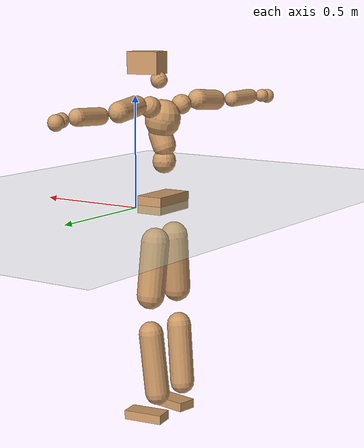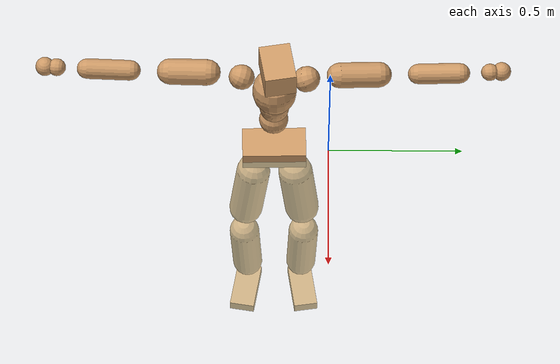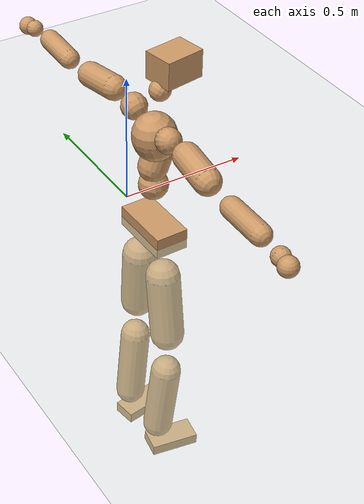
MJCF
<mujoco model="humanoid">
  <compiler coordinate="local" angle="radian"/>
  <default>
    <joint damping="0.0" armature="0.01" stiffness="0.0" limited="true"/>
    <geom conaffinity="1" condim="3" contype="7" margin="0.001" rgba="0.8 0.6 .4 1"/>
  </default>
  <asset>
    <texture type="skybox" builtin="gradient" rgb1=".4 .5 .6" rgb2="0 0 0" width="100" height="100"/>
    <texture builtin="flat" height="1278" mark="cross" markrgb="1 1 1" name="texgeom" random="0.01" rgb1="0.8 0.6 0.4" rgb2="0.8 0.6 0.4" type="cube" width="127"/>
    <texture builtin="checker" height="100" name="texplane" rgb1="0 0 0" rgb2="0.8 0.8 0.8" type="2d" width="100"/>
    <material name="MatPlane" reflectance="0.5" shininess="1" specular="1" texrepeat="60 60" texture="texplane"/>
    <material name="geom" texture="texgeom" texuniform="true"/>
  </asset>
  <worldbody>
    <light cutoff="100" diffuse="1 1 1" dir="-0 0 -1.3" directional="true" exponent="1" pos="0 0 1.3" specular=".1 .1 .1"/>
    <geom conaffinity="1" condim="3" name="floor" pos="0 0 0" rgba="0.8 0.9 0.8 1" size="100 100 .2" type="plane" material="MatPlane"/>
    <body name="Pelvis" pos="-0.0004 -0.2041 0.0126">
      <freejoint name="Pelvis"/>
      <geom type="box" contype="1" conaffinity="1" density="5359.375246" pos="-0.0083 -0.0002 -0.0124" size="0.0621 0.119 0.0399" quat="0.9999 0.0000 0.0000 0.0120" name="Pelvis"/>
      <body name="L_Hip" pos="-0.0213 0.0703 -0.0908">
        <joint name="L_Hip_x" type="hinge" pos="0 0 0" axis="1 0 0" stiffness="1600" damping="160" armature="0.02" range="-180.0000 180.0000"/>
        <joint name="L_Hip_y" type="hinge" pos="0 0 0" axis="0 1 0" stiffness="1600" damping="160" armature="0.02" range="-180.0000 180.0000"/>
        <joint name="L_Hip_z" type="hinge" pos="0 0 0" axis="0 0 1" stiffness="1600" damping="160" armature="0.02" range="-180.0000 180.0000"/>
        <geom type="capsule" contype="1" conaffinity="1" density="2040.816327" size="0.0646" fromto="0.0024 0.0101 -0.0941 0.0089 0.0367 -0.3417" name="L_Hip"/>
        <body name="L_Knee" pos="0.0113 0.0468 -0.4357">
          <joint name="L_Knee_x" type="hinge" pos="0 0 0" axis="1 0 0" stiffness="1600" damping="160" armature="0.02" range="-180.0000 180.0000"/>
          <joint name="L_Knee_y" type="hinge" pos="0 0 0" axis="0 1 0" stiffness="1600" damping="160" armature="0.02" range="-180.0000 180.0000"/>
          <joint name="L_Knee_z" type="hinge" pos="0 0 0" axis="0 0 1" stiffness="1600" damping="160" armature="0.02" range="-180.0000 180.0000"/>
          <geom type="capsule" contype="1" conaffinity="1" density="1234.567901" size="0.0569" fromto="-0.0090 -0.0027 -0.0864 -0.0386 -0.0114 -0.3687" name="L_Knee"/>
          <body name="L_Ankle" pos="-0.0476 -0.014 -0.4551">
            <joint name="L_Ankle_x" type="hinge" pos="0 0 0" axis="1 0 0" stiffness="1600" damping="160" armature="0.02" range="-180.0000 180.0000"/>
            <joint name="L_Ankle_y" type="hinge" pos="0 0 0" axis="0 1 0" stiffness="1600" damping="160" armature="0.02" range="-180.0000 180.0000"/>
            <joint name="L_Ankle_z" type="hinge" pos="0 0 0" axis="0 0 1" stiffness="1600" damping="160" armature="0.02" range="-180.0000 180.0000"/>
            <geom type="box" contype="1" conaffinity="1" density="1000.000002" pos="0.0649 0.0101 -0.0310" size="0.0922 0.0457 0.0214" quat="0.9970 0.0000 0.0000 0.0774" name="L_Ankle"/>
            <body name="L_Toe" pos="0.1299 0.0203 -0.0619">
              <joint name="L_Toe_x" type="hinge" pos="0 0 0" axis="1 0 0" stiffness="1000" damping="100" armature="0.02" range="-180.0000 180.0000"/>
              <joint name="L_Toe_y" type="hinge" pos="0 0 0" axis="0 1 0" stiffness="1000" damping="100" armature="0.02" range="-180.0000 180.0000"/>
              <joint name="L_Toe_z" type="hinge" pos="0 0 0" axis="0 0 1" stiffness="1000" damping="100" armature="0.02" range="-180.0000 180.0000"/>
              <geom type="box" contype="1" conaffinity="1" density="9331595.616689" pos="0.0000 0.0000 0.0320" size="0.0009 0.0023 0.0011" quat="0.9965 0.0000 0.0000 0.0836" name="L_Toe"/>
            </body>
          </body>
        </body>
      </body>
      <body name="R_Hip" pos="-0.0172 -0.0674 -0.0873">
        <joint name="R_Hip_x" type="hinge" pos="0 0 0" axis="1 0 0" stiffness="1600" damping="160" armature="0.02" range="-180.0000 180.0000"/>
        <joint name="R_Hip_y" type="hinge" pos="0 0 0" axis="0 1 0" stiffness="1600" damping="160" armature="0.02" range="-180.0000 180.0000"/>
        <joint name="R_Hip_z" type="hinge" pos="0 0 0" axis="0 0 1" stiffness="1600" damping="160" armature="0.02" range="-180.0000 180.0000"/>
        <geom type="capsule" contype="1" conaffinity="1" density="2040.816327" size="0.0636" fromto="0.0012 -0.0109 -0.0929 0.0046 -0.0414 -0.3527" name="R_Hip"/>
        <body name="R_Knee" pos="0.0058 -0.0523 -0.4457">
          <joint name="R_Knee_x" type="hinge" pos="0 0 0" axis="1 0 0" stiffness="1600" damping="160" armature="0.02" range="-180.0000 180.0000"/>
          <joint name="R_Knee_y" type="hinge" pos="0 0 0" axis="0 1 0" stiffness="1600" damping="160" armature="0.02" range="-180.0000 180.0000"/>
          <joint name="R_Knee_z" type="hinge" pos="0 0 0" axis="0 0 1" stiffness="1600" damping="160" armature="0.02" range="-180.0000 180.0000"/>
          <geom type="capsule" contype="1" conaffinity="1" density="1234.567901" size="0.0572" fromto="-0.0086 0.0034 -0.0867 -0.0361 0.0141 -0.3656" name="R_Knee"/>
          <body name="R_Ankle" pos="-0.0447 0.0175 -0.4524">
            <joint name="R_Ankle_x" type="hinge" pos="0 0 0" axis="1 0 0" stiffness="1600" damping="160" armature="0.02" range="-180.0000 180.0000"/>
            <joint name="R_Ankle_y" type="hinge" pos="0 0 0" axis="0 1 0" stiffness="1600" damping="160" armature="0.02" range="-180.0000 180.0000"/>
            <joint name="R_Ankle_z" type="hinge" pos="0 0 0" axis="0 0 1" stiffness="1600" damping="160" armature="0.02" range="-180.0000 180.0000"/>
            <geom type="box" contype="1" conaffinity="1" density="1000.000024" pos="0.0664 -0.0107 -0.0264" size="0.0925 0.0477 0.0213" quat="0.9968 0.0000 0.0000 -0.0796" name="R_Ankle"/>
            <body name="R_Toe" pos="0.1328 -0.0213 -0.0528">
              <joint name="R_Toe_x" type="hinge" pos="0 0 0" axis="1 0 0" stiffness="1000" damping="100" armature="0.02" range="-180.0000 180.0000"/>
              <joint name="R_Toe_y" type="hinge" pos="0 0 0" axis="0 1 0" stiffness="1000" damping="100" armature="0.02" range="-180.0000 180.0000"/>
              <joint name="R_Toe_z" type="hinge" pos="0 0 0" axis="0 0 1" stiffness="1000" damping="100" armature="0.02" range="-180.0000 180.0000"/>
              <geom type="box" contype="1" conaffinity="1" density="9222543.900267" pos="0.0000 0.0000 0.0297" size="0.0008 0.0023 0.0012" quat="0.9975 0.0000 0.0000 -0.0712" name="R_Toe"/>
            </body>
          </body>
        </body>
      </body>
      <body name="Torso" pos="-0.0114 -0.0042 0.1038">
        <joint name="Torso_x" type="hinge" pos="0 0 0" axis="1 0 0" stiffness="2000" damping="200" armature="0.02" range="-180.0000 180.0000"/>
        <joint name="Torso_y" type="hinge" pos="0 0 0" axis="0 1 0" stiffness="2000" damping="200" armature="0.02" range="-180.0000 180.0000"/>
        <joint name="Torso_z" type="hinge" pos="0 0 0" axis="0 0 1" stiffness="2000" damping="200" armature="0.02" range="-180.0000 180.0000"/>
        <geom type="capsule" contype="1" conaffinity="1" density="2040.816327" size="0.0544" fromto="-0.0011 0.0024 0.0723 -0.0011 0.0024 0.0743" name="Torso"/>
        <body name="Spine" pos="-0.0021 0.0048 0.1466">
          <joint name="Spine_x" type="hinge" pos="0 0 0" axis="1 0 0" stiffness="2000" damping="200" armature="0.02" range="-180.0000 180.0000"/>
          <joint name="Spine_y" type="hinge" pos="0 0 0" axis="0 1 0" stiffness="2000" damping="200" armature="0.02" range="-180.0000 180.0000"/>
          <joint name="Spine_z" type="hinge" pos="0 0 0" axis="0 0 1" stiffness="2000" damping="200" armature="0.02" range="-180.0000 180.0000"/>
          <geom type="capsule" contype="1" conaffinity="1" density="2040.816327" size="0.054" fromto="0.0202 0.0016 0.0500 -0.0002 -0.0000 -0.0004" name="Spine"/>
          <body name="Chest" pos="0.0201 0.0015 0.0496">
            <joint name="Chest_x" type="hinge" pos="0 0 0" axis="1 0 0" stiffness="2000" damping="200" armature="0.02" range="-180.0000 180.0000"/>
            <joint name="Chest_y" type="hinge" pos="0 0 0" axis="0 1 0" stiffness="2000" damping="200" armature="0.02" range="-180.0000 180.0000"/>
            <joint name="Chest_z" type="hinge" pos="0 0 0" axis="0 0 1" stiffness="2000" damping="200" armature="0.02" range="-180.0000 180.0000"/>
            <geom type="capsule" contype="1" conaffinity="1" density="2040.816327" size="0.0805" fromto="-0.0144 -0.0009 0.0791 -0.0115 -0.0007 0.0630" name="Chest"/>
            <body name="Neck" pos="-0.0222 -0.0032 0.2079">
              <joint name="Neck_x" type="hinge" pos="0 0 0" axis="1 0 0" stiffness="1000" damping="100" armature="0.02" range="-180.0000 180.0000"/>
              <joint name="Neck_y" type="hinge" pos="0 0 0" axis="0 1 0" stiffness="1000" damping="100" armature="0.02" range="-180.0000 180.0000"/>
              <joint name="Neck_z" type="hinge" pos="0 0 0" axis="0 0 1" stiffness="1000" damping="100" armature="0.02" range="-180.0000 180.0000"/>
              <geom type="capsule" contype="1" conaffinity="1" density="1000" size="0.0383" fromto="0.0283 0.0042 0.0369 0.0295 0.0043 0.0384" name="Neck"/>
              <body name="Head" pos="0.0579 0.0085 0.0753">
                <joint name="Head_x" type="hinge" pos="0 0 0" axis="1 0 0" stiffness="1000" damping="100" armature="0.02" range="-180.0000 180.0000"/>
                <joint name="Head_y" type="hinge" pos="0 0 0" axis="0 1 0" stiffness="1000" damping="100" armature="0.02" range="-180.0000 180.0000"/>
                <joint name="Head_z" type="hinge" pos="0 0 0" axis="0 0 1" stiffness="1000" damping="100" armature="0.02" range="-180.0000 180.0000"/>
                <geom type="box" contype="1" conaffinity="1" density="2249.999974" pos="0.0299 0.0052 0.0387" size="0.0744 0.0567 0.0509" quat="0.9962 0.0000 0.0000 0.0867" name="Head"/>
              </body>
            </body>
            <body name="L_Thorax" pos="-0.0244 0.0723 0.1111">
              <joint name="L_Thorax_x" type="hinge" pos="0 0 0" axis="1 0 0" stiffness="1000" damping="100" armature="0.02" range="-180.0000 180.0000"/>
              <joint name="L_Thorax_y" type="hinge" pos="0 0 0" axis="0 1 0" stiffness="1000" damping="100" armature="0.02" range="-180.0000 180.0000"/>
              <joint name="L_Thorax_z" type="hinge" pos="0 0 0" axis="0 0 1" stiffness="1000" damping="100" armature="0.02" range="-180.0000 180.0000"/>
              <geom type="capsule" contype="1" conaffinity="1" density="1000" size="0.0478" fromto="-0.0008 0.0430 0.0210 -0.0009 0.0448 0.0219" name="L_Thorax"/>
              <body name="L_Shoulder" pos="-0.0017 0.0877 0.0429">
                <joint name="L_Shoulder_x" type="hinge" pos="0 0 0" axis="1 0 0" stiffness="1000" damping="100" armature="0.02" range="-720.0000 720.0000"/>
                <joint name="L_Shoulder_y" type="hinge" pos="0 0 0" axis="0 1 0" stiffness="1000" damping="100" armature="0.02" range="-720.0000 720.0000"/>
                <joint name="L_Shoulder_z" type="hinge" pos="0 0 0" axis="0 0 1" stiffness="1000" damping="100" armature="0.02" range="-720.0000 720.0000"/>
                <geom type="capsule" contype="1" conaffinity="1" density="1000" size="0.0466" fromto="-0.0078 0.0757 -0.0080 -0.0227 0.2195 -0.0230" name="L_Shoulder"/>
                <body name="L_Elbow" pos="-0.0305 0.2952 -0.031">
                  <joint name="L_Elbow_x" type="hinge" pos="0 0 0" axis="1 0 0" stiffness="1000" damping="100" armature="0.02" range="-720.0000 720.0000"/>
                  <joint name="L_Elbow_y" type="hinge" pos="0 0 0" axis="0 1 0" stiffness="1000" damping="100" armature="0.02" range="-720.0000 720.0000"/>
                  <joint name="L_Elbow_z" type="hinge" pos="0 0 0" axis="0 0 1" stiffness="1000" damping="100" armature="0.02" range="-720.0000 720.0000"/>
                  <geom type="capsule" contype="1" conaffinity="1" density="1000" size="0.0373" fromto="-0.0000 0.0672 0.0030 -0.0001 0.2189 0.0098" name="L_Elbow"/>
                  <body name="L_Wrist" pos="-0.0001 0.2861 0.0129">
                    <joint name="L_Wrist_x" type="hinge" pos="0 0 0" axis="1 0 0" stiffness="600" damping="60" armature="0.02" range="-180.0000 180.0000"/>
                    <joint name="L_Wrist_y" type="hinge" pos="0 0 0" axis="0 1 0" stiffness="600" damping="60" armature="0.02" range="-180.0000 180.0000"/>
                    <joint name="L_Wrist_z" type="hinge" pos="0 0 0" axis="0 0 1" stiffness="600" damping="60" armature="0.02" range="-180.0000 180.0000"/>
                    <geom type="capsule" contype="1" conaffinity="1" density="1000" size="0.0313" fromto="-0.0072 0.0420 -0.0055 -0.0075 0.0439 -0.0058" name="L_Wrist"/>
                    <body name="L_Hand" pos="-0.0146 0.0859 -0.0113">
                      <joint name="L_Hand_x" type="hinge" pos="0 0 0" axis="1 0 0" stiffness="600" damping="60" armature="0.02" range="-180.0000 180.0000"/>
                      <joint name="L_Hand_y" type="hinge" pos="0 0 0" axis="0 1 0" stiffness="600" damping="60" armature="0.02" range="-180.0000 180.0000"/>
                      <joint name="L_Hand_z" type="hinge" pos="0 0 0" axis="0 0 1" stiffness="600" damping="60" armature="0.02" range="-180.0000 180.0000"/>
                      <geom type="sphere" contype="1" conaffinity="1" density="1000" size="0.0342" pos="0.0000 0.0000 0.0000" name="L_Hand"/>
                    </body>
                  </body>
                </body>
              </body>
            </body>
            <body name="R_Thorax" pos="-0.0312 -0.0738 0.1075">
              <joint name="R_Thorax_x" type="hinge" pos="0 0 0" axis="1 0 0" stiffness="1000" damping="100" armature="0.02" range="-180.0000 180.0000"/>
              <joint name="R_Thorax_y" type="hinge" pos="0 0 0" axis="0 1 0" stiffness="1000" damping="100" armature="0.02" range="-180.0000 180.0000"/>
              <joint name="R_Thorax_z" type="hinge" pos="0 0 0" axis="0 0 1" stiffness="1000" damping="100" armature="0.02" range="-180.0000 180.0000"/>
              <geom type="capsule" contype="1" conaffinity="1" density="1000" size="0.0461" fromto="-0.0032 -0.0460 0.0210 -0.0034 -0.0478 0.0218" name="R_Thorax"/>
              <body name="R_Shoulder" pos="-0.0066 -0.0938 0.0428">
                <joint name="R_Shoulder_x" type="hinge" pos="0 0 0" axis="1 0 0" stiffness="1000" damping="100" armature="0.02" range="-720.0000 720.0000"/>
                <joint name="R_Shoulder_y" type="hinge" pos="0 0 0" axis="0 1 0" stiffness="1000" damping="100" armature="0.02" range="-720.0000 720.0000"/>
                <joint name="R_Shoulder_z" type="hinge" pos="0 0 0" axis="0 0 1" stiffness="1000" damping="100" armature="0.02" range="-720.0000 720.0000"/>
                <geom type="capsule" contype="1" conaffinity="1" density="1000" size="0.0478" fromto="-0.0059 -0.0773 -0.0066 -0.0163 -0.2146 -0.0183" name="R_Shoulder"/>
                <body name="R_Elbow" pos="-0.0222 -0.2919 -0.025">
                  <joint name="R_Elbow_x" type="hinge" pos="0 0 0" axis="1 0 0" stiffness="1000" damping="100" armature="0.02" range="-720.0000 720.0000"/>
                  <joint name="R_Elbow_y" type="hinge" pos="0 0 0" axis="0 1 0" stiffness="1000" damping="100" armature="0.02" range="-720.0000 720.0000"/>
                  <joint name="R_Elbow_z" type="hinge" pos="0 0 0" axis="0 0 1" stiffness="1000" damping="100" armature="0.02" range="-720.0000 720.0000"/>
                  <geom type="capsule" contype="1" conaffinity="1" density="1000" size="0.0371" fromto="-0.0016 -0.0671 0.0012 -0.0055 -0.2259 0.0042" name="R_Elbow"/>
                  <body name="R_Wrist" pos="-0.0071 -0.293 0.0054">
                    <joint name="R_Wrist_x" type="hinge" pos="0 0 0" axis="1 0 0" stiffness="600" damping="60" armature="0.02" range="-180.0000 180.0000"/>
                    <joint name="R_Wrist_y" type="hinge" pos="0 0 0" axis="0 1 0" stiffness="600" damping="60" armature="0.02" range="-180.0000 180.0000"/>
                    <joint name="R_Wrist_z" type="hinge" pos="0 0 0" axis="0 0 1" stiffness="600" damping="60" armature="0.02" range="-180.0000 180.0000"/>
                    <geom type="capsule" contype="1" conaffinity="1" density="1000" size="0.0321" fromto="-0.0055 -0.0427 -0.0040 -0.0058 -0.0447 -0.0042" name="R_Wrist"/>
                    <body name="R_Hand" pos="-0.0113 -0.0873 -0.0082">
                      <joint name="R_Hand_x" type="hinge" pos="0 0 0" axis="1 0 0" stiffness="600" damping="60" armature="0.02" range="-180.0000 180.0000"/>
                      <joint name="R_Hand_y" type="hinge" pos="0 0 0" axis="0 1 0" stiffness="600" damping="60" armature="0.02" range="-180.0000 180.0000"/>
                      <joint name="R_Hand_z" type="hinge" pos="0 0 0" axis="0 0 1" stiffness="600" damping="60" armature="0.02" range="-180.0000 180.0000"/>
                      <geom type="sphere" contype="1" conaffinity="1" density="1000" size="0.0345" pos="0.0000 0.0000 0.0000" name="R_Hand"/>
                    </body>
                  </body>
                </body>
              </body>
            </body>
          </body>
        </body>
      </body>
    </body>
  </worldbody>
  <actuator>
    <motor name="L_Hip_x" joint="L_Hip_x" gear="500"/>
    <motor name="L_Hip_y" joint="L_Hip_y" gear="500"/>
    <motor name="L_Hip_z" joint="L_Hip_z" gear="500"/>
    <motor name="L_Knee_x" joint="L_Knee_x" gear="500"/>
    <motor name="L_Knee_y" joint="L_Knee_y" gear="500"/>
    <motor name="L_Knee_z" joint="L_Knee_z" gear="500"/>
    <motor name="L_Ankle_x" joint="L_Ankle_x" gear="500"/>
    <motor name="L_Ankle_y" joint="L_Ankle_y" gear="500"/>
    <motor name="L_Ankle_z" joint="L_Ankle_z" gear="500"/>
    <motor name="L_Toe_x" joint="L_Toe_x" gear="500"/>
    <motor name="L_Toe_y" joint="L_Toe_y" gear="500"/>
    <motor name="L_Toe_z" joint="L_Toe_z" gear="500"/>
    <motor name="R_Hip_x" joint="R_Hip_x" gear="500"/>
    <motor name="R_Hip_y" joint="R_Hip_y" gear="500"/>
    <motor name="R_Hip_z" joint="R_Hip_z" gear="500"/>
    <motor name="R_Knee_x" joint="R_Knee_x" gear="500"/>
    <motor name="R_Knee_y" joint="R_Knee_y" gear="500"/>
    <motor name="R_Knee_z" joint="R_Knee_z" gear="500"/>
    <motor name="R_Ankle_x" joint="R_Ankle_x" gear="500"/>
    <motor name="R_Ankle_y" joint="R_Ankle_y" gear="500"/>
    <motor name="R_Ankle_z" joint="R_Ankle_z" gear="500"/>
    <motor name="R_Toe_x" joint="R_Toe_x" gear="500"/>
    <motor name="R_Toe_y" joint="R_Toe_y" gear="500"/>
    <motor name="R_Toe_z" joint="R_Toe_z" gear="500"/>
    <motor name="Torso_x" joint="Torso_x" gear="500"/>
    <motor name="Torso_y" joint="Torso_y" gear="500"/>
    <motor name="Torso_z" joint="Torso_z" gear="500"/>
    <motor name="Spine_x" joint="Spine_x" gear="500"/>
    <motor name="Spine_y" joint="Spine_y" gear="500"/>
    <motor name="Spine_z" joint="Spine_z" gear="500"/>
    <motor name="Chest_x" joint="Chest_x" gear="500"/>
    <motor name="Chest_y" joint="Chest_y" gear="500"/>
    <motor name="Chest_z" joint="Chest_z" gear="500"/>
    <motor name="Neck_x" joint="Neck_x" gear="500"/>
    <motor name="Neck_y" joint="Neck_y" gear="500"/>
    <motor name="Neck_z" joint="Neck_z" gear="500"/>
    <motor name="Head_x" joint="Head_x" gear="500"/>
    <motor name="Head_y" joint="Head_y" gear="500"/>
    <motor name="Head_z" joint="Head_z" gear="500"/>
    <motor name="L_Thorax_x" joint="L_Thorax_x" gear="500"/>
    <motor name="L_Thorax_y" joint="L_Thorax_y" gear="500"/>
    <motor name="L_Thorax_z" joint="L_Thorax_z" gear="500"/>
    <motor name="L_Shoulder_x" joint="L_Shoulder_x" gear="500"/>
    <motor name="L_Shoulder_y" joint="L_Shoulder_y" gear="500"/>
    <motor name="L_Shoulder_z" joint="L_Shoulder_z" gear="500"/>
    <motor name="L_Elbow_x" joint="L_Elbow_x" gear="500"/>
    <motor name="L_Elbow_y" joint="L_Elbow_y" gear="500"/>
    <motor name="L_Elbow_z" joint="L_Elbow_z" gear="500"/>
    <motor name="L_Wrist_x" joint="L_Wrist_x" gear="500"/>
    <motor name="L_Wrist_y" joint="L_Wrist_y" gear="500"/>
    <motor name="L_Wrist_z" joint="L_Wrist_z" gear="500"/>
    <motor name="L_Hand_x" joint="L_Hand_x" gear="500"/>
    <motor name="L_Hand_y" joint="L_Hand_y" gear="500"/>
    <motor name="L_Hand_z" joint="L_Hand_z" gear="500"/>
    <motor name="R_Thorax_x" joint="R_Thorax_x" gear="500"/>
    <motor name="R_Thorax_y" joint="R_Thorax_y" gear="500"/>
    <motor name="R_Thorax_z" joint="R_Thorax_z" gear="500"/>
    <motor name="R_Shoulder_x" joint="R_Shoulder_x" gear="500"/>
    <motor name="R_Shoulder_y" joint="R_Shoulder_y" gear="500"/>
    <motor name="R_Shoulder_z" joint="R_Shoulder_z" gear="500"/>
    <motor name="R_Elbow_x" joint="R_Elbow_x" gear="500"/>
    <motor name="R_Elbow_y" joint="R_Elbow_y" gear="500"/>
    <motor name="R_Elbow_z" joint="R_Elbow_z" gear="500"/>
    <motor name="R_Wrist_x" joint="R_Wrist_x" gear="500"/>
    <motor name="R_Wrist_y" joint="R_Wrist_y" gear="500"/>
    <motor name="R_Wrist_z" joint="R_Wrist_z" gear="500"/>
    <motor name="R_Hand_x" joint="R_Hand_x" gear="500"/>
    <motor name="R_Hand_y" joint="R_Hand_y" gear="500"/>
    <motor name="R_Hand_z" joint="R_Hand_z" gear="500"/>
  </actuator>
  <contact>
    <exclude body1="Torso" body2="Chest"/>
    <exclude body1="Head" body2="Chest"/>
    <exclude body1="R_Knee" body2="R_Toe"/>
    <exclude body1="R_Knee" body2="L_Ankle"/>
    <exclude body1="R_Knee" body2="L_Toe"/>
    <exclude body1="L_Knee" body2="L_Toe"/>
    <exclude body1="L_Knee" body2="R_Ankle"/>
    <exclude body1="L_Knee" body2="R_Toe"/>
    <exclude body1="L_Shoulder" body2="Chest"/>
    <exclude body1="R_Shoulder" body2="Chest"/>
  </contact>
  <sensor/>
  <size njmax="700" nconmax="700"/>
</mujoco>
